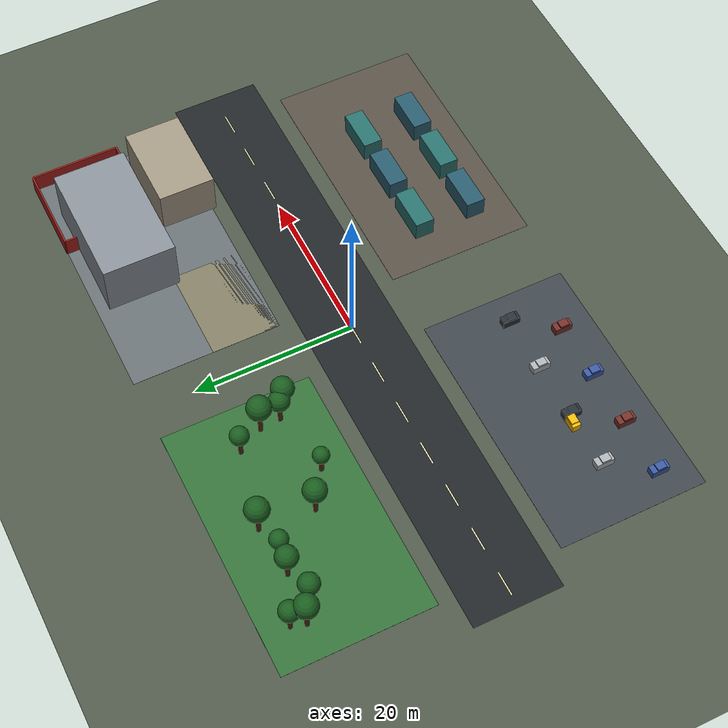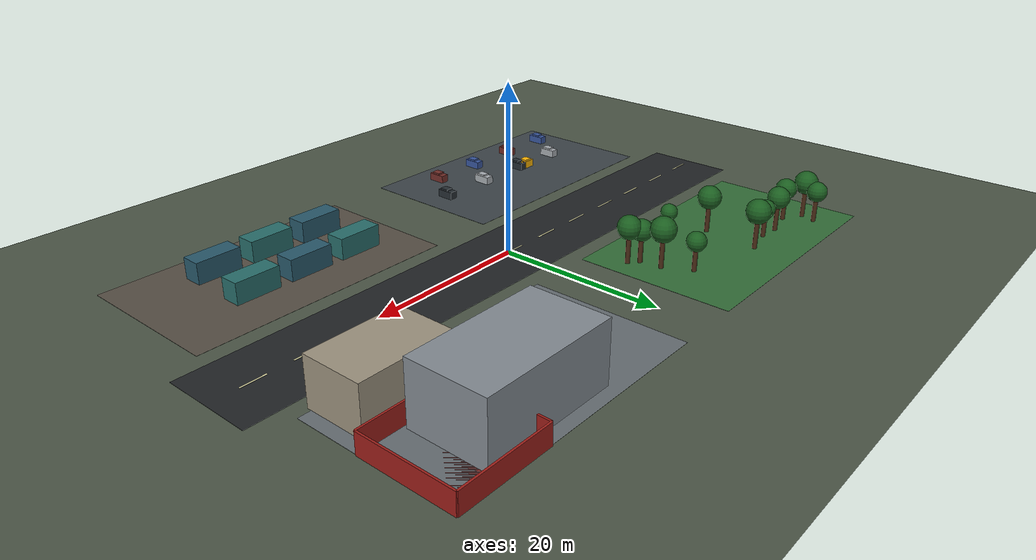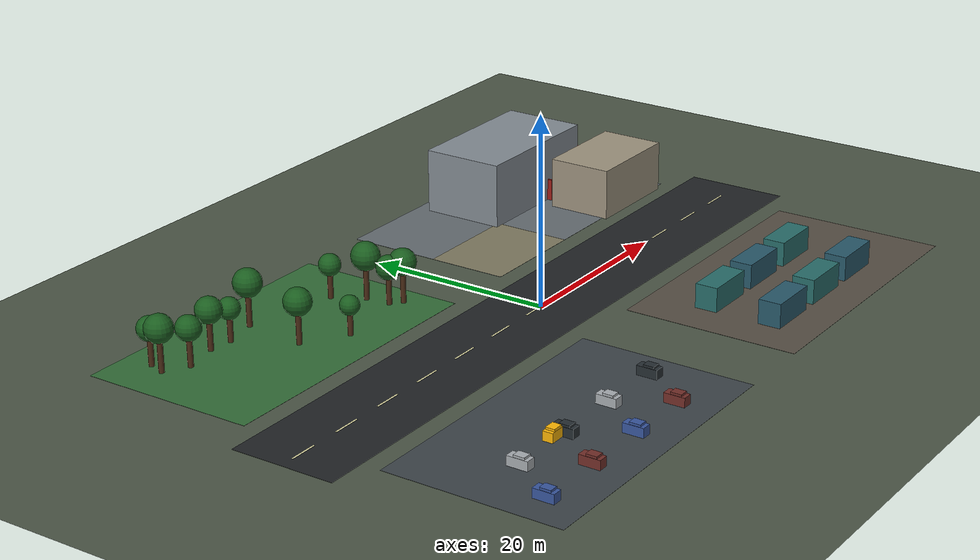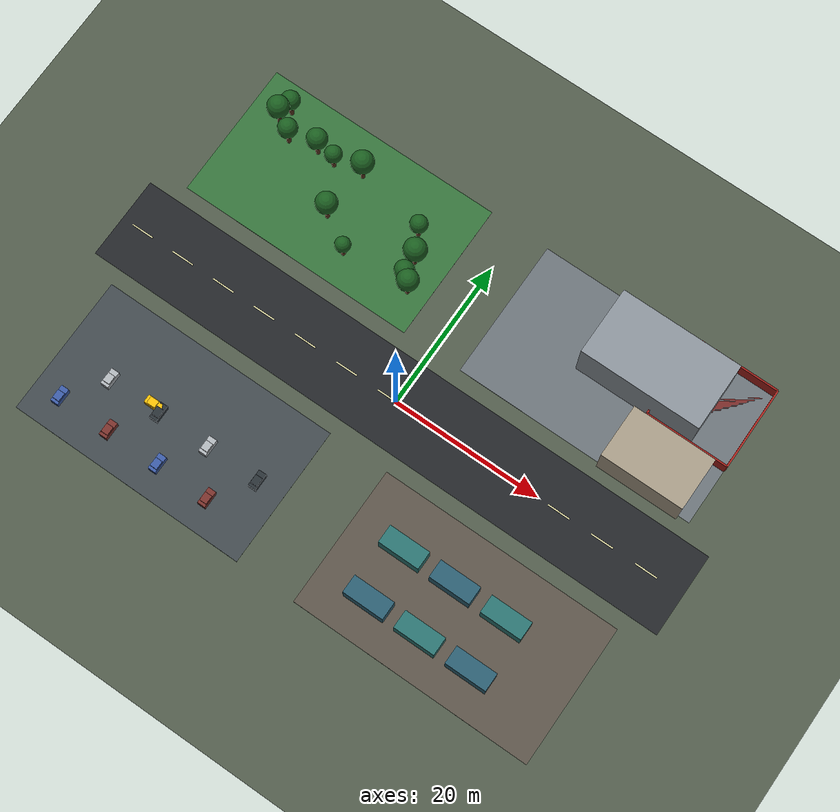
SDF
<?xml version='1.0' encoding='utf-8'?>
<sdf version="1.9">
  <world name="gsi_search_world_v1_1">
    <physics type="ode">
      <max_step_size>0.004</max_step_size>
      <real_time_factor>1.0</real_time_factor>
      <real_time_update_rate>250</real_time_update_rate>
    </physics>
    <gravity>0 0 -9.8</gravity>
    <magnetic_field>6e-06 2.3e-05 -4.2e-05</magnetic_field>
    <atmosphere type="adiabatic" />
    <scene>
      <grid>false</grid>
      <ambient>0.62 0.62 0.60 1</ambient>
      <background>0.70 0.78 0.84 1</background>
      <shadows>true</shadows>
    </scene>
    <light name="sun" type="directional">
      <pose>0 0 100 0 0 0</pose>
      <cast_shadows>true</cast_shadows>
      <intensity>1.0</intensity>
      <direction>-0.3 0.2 -0.9</direction>
      <diffuse>0.95 0.93 0.88 1</diffuse>
      <specular>0.25 0.25 0.25 1</specular>
    </light>
    <spherical_coordinates>
      <surface_model>EARTH_WGS84</surface_model>
      <world_frame_orientation>ENU</world_frame_orientation>
      <latitude_deg>30.33403400</latitude_deg>
      <longitude_deg>120.03629500</longitude_deg>
      <elevation>0</elevation>
    </spherical_coordinates>
    <model name="ground_plane">
      <static>true</static>
      <link name="link">
        <collision name="collision">
          <geometry>
            <plane>
              <normal>0 0 1</normal>
              <size>110 90</size>
            </plane>
          </geometry>
        </collision>
        <visual name="visual">
          <geometry>
            <plane>
              <normal>0 0 1</normal>
              <size>110 90</size>
            </plane>
          </geometry>
          <material>
            <ambient>0.3 0.34 0.28 1</ambient>
            <diffuse>0.3 0.34 0.28 1</diffuse>
            <specular>0.12 0.12 0.12 1</specular>
          </material>
        </visual>
      </link>
    </model>
    <model name="semantic-parking-west">
      <static>true</static>
      <pose>-20 -16.75 0.015 0 0 0</pose>
      <link name="link">
        <visual name="visual">
          <geometry>
            <box>
              <size>32 18.5 0.02</size>
            </box>
          </geometry>
          <cast_shadows>false</cast_shadows>
          <material>
            <ambient>0.24 0.27 0.29 1</ambient>
            <diffuse>0.24 0.27 0.29 1</diffuse>
            <specular>0.12 0.12 0.12 1</specular>
          </material>
        </visual>
      </link>
    </model>
    <model name="semantic-loading-east">
      <static>true</static>
      <pose>20 -16.75 0.015 0 0 0</pose>
      <link name="link">
        <visual name="visual">
          <geometry>
            <box>
              <size>32 18.5 0.02</size>
            </box>
          </geometry>
          <cast_shadows>false</cast_shadows>
          <material>
            <ambient>0.34 0.31 0.27 1</ambient>
            <diffuse>0.34 0.31 0.27 1</diffuse>
            <specular>0.12 0.12 0.12 1</specular>
          </material>
        </visual>
      </link>
    </model>
    <model name="semantic-park-northwest">
      <static>true</static>
      <pose>-20 16.75 0.015 0 0 0</pose>
      <link name="link">
        <visual name="visual">
          <geometry>
            <box>
              <size>32 18.5 0.02</size>
            </box>
          </geometry>
          <cast_shadows>false</cast_shadows>
          <material>
            <ambient>0.2 0.43 0.22 1</ambient>
            <diffuse>0.2 0.43 0.22 1</diffuse>
            <specular>0.12 0.12 0.12 1</specular>
          </material>
        </visual>
      </link>
    </model>
    <model name="semantic-campus-northeast">
      <static>true</static>
      <pose>20 16.75 0.015 0 0 0</pose>
      <link name="link">
        <visual name="visual">
          <geometry>
            <box>
              <size>32 18.5 0.02</size>
            </box>
          </geometry>
          <cast_shadows>false</cast_shadows>
          <material>
            <ambient>0.4 0.43 0.45 1</ambient>
            <diffuse>0.4 0.43 0.45 1</diffuse>
            <specular>0.12 0.12 0.12 1</specular>
          </material>
        </visual>
      </link>
    </model>
    <model name="semantic-road-main">
      <static>true</static>
      <pose>0 0 0.015 0 0 0</pose>
      <link name="link">
        <visual name="visual">
          <geometry>
            <box>
              <size>80 11 0.02</size>
            </box>
          </geometry>
          <cast_shadows>false</cast_shadows>
          <material>
            <ambient>0.13 0.14 0.15 1</ambient>
            <diffuse>0.13 0.14 0.15 1</diffuse>
            <specular>0.12 0.12 0.12 1</specular>
          </material>
        </visual>
      </link>
    </model>
    <model name="semantic-entrance-east">
      <static>true</static>
      <pose>10 11.75 0.015 0 0 0</pose>
      <link name="link">
        <visual name="visual">
          <geometry>
            <box>
              <size>12 8.5 0.02</size>
            </box>
          </geometry>
          <cast_shadows>false</cast_shadows>
          <material>
            <ambient>0.5 0.48 0.38 1</ambient>
            <diffuse>0.5 0.48 0.38 1</diffuse>
            <specular>0.12 0.12 0.12 1</specular>
          </material>
        </visual>
      </link>
    </model>
    <model name="semantic-restricted-northeast">
      <static>true</static>
      <pose>30.5 20.5 0.015 0 0 0</pose>
      <link name="link">
        <visual name="visual">
          <geometry>
            <box>
              <size>11 11 0.02</size>
            </box>
          </geometry>
          <cast_shadows>false</cast_shadows>
          <material>
            <ambient>0.45 0.16 0.15 1</ambient>
            <diffuse>0.45 0.16 0.15 1</diffuse>
            <specular>0.12 0.12 0.12 1</specular>
          </material>
        </visual>
      </link>
    </model>
    <model name="road-marking-01">
      <static>true</static>
      <pose>-37 0 0.035 0 0 0</pose>
      <link name="link">
        <visual name="visual">
          <geometry>
            <box>
              <size>3 0.18 0.025</size>
            </box>
          </geometry>
          <cast_shadows>false</cast_shadows>
          <material>
            <ambient>0.92 0.9 0.68 1</ambient>
            <diffuse>0.92 0.9 0.68 1</diffuse>
            <specular>0.12 0.12 0.12 1</specular>
          </material>
        </visual>
      </link>
    </model>
    <model name="road-marking-02">
      <static>true</static>
      <pose>-31 0 0.035 0 0 0</pose>
      <link name="link">
        <visual name="visual">
          <geometry>
            <box>
              <size>3 0.18 0.025</size>
            </box>
          </geometry>
          <cast_shadows>false</cast_shadows>
          <material>
            <ambient>0.92 0.9 0.68 1</ambient>
            <diffuse>0.92 0.9 0.68 1</diffuse>
            <specular>0.12 0.12 0.12 1</specular>
          </material>
        </visual>
      </link>
    </model>
    <model name="road-marking-03">
      <static>true</static>
      <pose>-25 0 0.035 0 0 0</pose>
      <link name="link">
        <visual name="visual">
          <geometry>
            <box>
              <size>3 0.18 0.025</size>
            </box>
          </geometry>
          <cast_shadows>false</cast_shadows>
          <material>
            <ambient>0.92 0.9 0.68 1</ambient>
            <diffuse>0.92 0.9 0.68 1</diffuse>
            <specular>0.12 0.12 0.12 1</specular>
          </material>
        </visual>
      </link>
    </model>
    <model name="road-marking-04">
      <static>true</static>
      <pose>-19 0 0.035 0 0 0</pose>
      <link name="link">
        <visual name="visual">
          <geometry>
            <box>
              <size>3 0.18 0.025</size>
            </box>
          </geometry>
          <cast_shadows>false</cast_shadows>
          <material>
            <ambient>0.92 0.9 0.68 1</ambient>
            <diffuse>0.92 0.9 0.68 1</diffuse>
            <specular>0.12 0.12 0.12 1</specular>
          </material>
        </visual>
      </link>
    </model>
    <model name="road-marking-05">
      <static>true</static>
      <pose>-13 0 0.035 0 0 0</pose>
      <link name="link">
        <visual name="visual">
          <geometry>
            <box>
              <size>3 0.18 0.025</size>
            </box>
          </geometry>
          <cast_shadows>false</cast_shadows>
          <material>
            <ambient>0.92 0.9 0.68 1</ambient>
            <diffuse>0.92 0.9 0.68 1</diffuse>
            <specular>0.12 0.12 0.12 1</specular>
          </material>
        </visual>
      </link>
    </model>
    <model name="road-marking-06">
      <static>true</static>
      <pose>-7 0 0.035 0 0 0</pose>
      <link name="link">
        <visual name="visual">
          <geometry>
            <box>
              <size>3 0.18 0.025</size>
            </box>
          </geometry>
          <cast_shadows>false</cast_shadows>
          <material>
            <ambient>0.92 0.9 0.68 1</ambient>
            <diffuse>0.92 0.9 0.68 1</diffuse>
            <specular>0.12 0.12 0.12 1</specular>
          </material>
        </visual>
      </link>
    </model>
    <model name="road-marking-07">
      <static>true</static>
      <pose>-1 0 0.035 0 0 0</pose>
      <link name="link">
        <visual name="visual">
          <geometry>
            <box>
              <size>3 0.18 0.025</size>
            </box>
          </geometry>
          <cast_shadows>false</cast_shadows>
          <material>
            <ambient>0.92 0.9 0.68 1</ambient>
            <diffuse>0.92 0.9 0.68 1</diffuse>
            <specular>0.12 0.12 0.12 1</specular>
          </material>
        </visual>
      </link>
    </model>
    <model name="road-marking-08">
      <static>true</static>
      <pose>5 0 0.035 0 0 0</pose>
      <link name="link">
        <visual name="visual">
          <geometry>
            <box>
              <size>3 0.18 0.025</size>
            </box>
          </geometry>
          <cast_shadows>false</cast_shadows>
          <material>
            <ambient>0.92 0.9 0.68 1</ambient>
            <diffuse>0.92 0.9 0.68 1</diffuse>
            <specular>0.12 0.12 0.12 1</specular>
          </material>
        </visual>
      </link>
    </model>
    <model name="road-marking-09">
      <static>true</static>
      <pose>11 0 0.035 0 0 0</pose>
      <link name="link">
        <visual name="visual">
          <geometry>
            <box>
              <size>3 0.18 0.025</size>
            </box>
          </geometry>
          <cast_shadows>false</cast_shadows>
          <material>
            <ambient>0.92 0.9 0.68 1</ambient>
            <diffuse>0.92 0.9 0.68 1</diffuse>
            <specular>0.12 0.12 0.12 1</specular>
          </material>
        </visual>
      </link>
    </model>
    <model name="road-marking-10">
      <static>true</static>
      <pose>17 0 0.035 0 0 0</pose>
      <link name="link">
        <visual name="visual">
          <geometry>
            <box>
              <size>3 0.18 0.025</size>
            </box>
          </geometry>
          <cast_shadows>false</cast_shadows>
          <material>
            <ambient>0.92 0.9 0.68 1</ambient>
            <diffuse>0.92 0.9 0.68 1</diffuse>
            <specular>0.12 0.12 0.12 1</specular>
          </material>
        </visual>
      </link>
    </model>
    <model name="road-marking-11">
      <static>true</static>
      <pose>23 0 0.035 0 0 0</pose>
      <link name="link">
        <visual name="visual">
          <geometry>
            <box>
              <size>3 0.18 0.025</size>
            </box>
          </geometry>
          <cast_shadows>false</cast_shadows>
          <material>
            <ambient>0.92 0.9 0.68 1</ambient>
            <diffuse>0.92 0.9 0.68 1</diffuse>
            <specular>0.12 0.12 0.12 1</specular>
          </material>
        </visual>
      </link>
    </model>
    <model name="road-marking-12">
      <static>true</static>
      <pose>29 0 0.035 0 0 0</pose>
      <link name="link">
        <visual name="visual">
          <geometry>
            <box>
              <size>3 0.18 0.025</size>
            </box>
          </geometry>
          <cast_shadows>false</cast_shadows>
          <material>
            <ambient>0.92 0.9 0.68 1</ambient>
            <diffuse>0.92 0.9 0.68 1</diffuse>
            <specular>0.12 0.12 0.12 1</specular>
          </material>
        </visual>
      </link>
    </model>
    <model name="road-marking-13">
      <static>true</static>
      <pose>35 0 0.035 0 0 0</pose>
      <link name="link">
        <visual name="visual">
          <geometry>
            <box>
              <size>3 0.18 0.025</size>
            </box>
          </geometry>
          <cast_shadows>false</cast_shadows>
          <material>
            <ambient>0.92 0.9 0.68 1</ambient>
            <diffuse>0.92 0.9 0.68 1</diffuse>
            <specular>0.12 0.12 0.12 1</specular>
          </material>
        </visual>
      </link>
    </model>
    <model name="office-main">
      <static>true</static>
      <pose>23 20 3.5 0 0 0</pose>
      <link name="link">
        <collision name="collision">
          <geometry>
            <box>
              <size>16 9 7</size>
            </box>
          </geometry>
        </collision>
        <visual name="visual">
          <geometry>
            <box>
              <size>16 9 7</size>
            </box>
          </geometry>
          <cast_shadows>true</cast_shadows>
          <material>
            <ambient>0.52 0.55 0.58 1</ambient>
            <diffuse>0.52 0.55 0.58 1</diffuse>
            <specular>0.12 0.12 0.12 1</specular>
          </material>
        </visual>
      </link>
    </model>
    <model name="service-building">
      <static>true</static>
      <pose>29 10.5 2.75 0 0 0</pose>
      <link name="link">
        <collision name="collision">
          <geometry>
            <box>
              <size>11 7 5.5</size>
            </box>
          </geometry>
        </collision>
        <visual name="visual">
          <geometry>
            <box>
              <size>11 7 5.5</size>
            </box>
          </geometry>
          <cast_shadows>true</cast_shadows>
          <material>
            <ambient>0.62 0.58 0.5 1</ambient>
            <diffuse>0.62 0.58 0.5 1</diffuse>
            <specular>0.12 0.12 0.12 1</specular>
          </material>
        </visual>
      </link>
    </model>
    <model name="tree-01">
      <static>true</static>
      <pose>-19.4064 20.8903 0 0 0 0</pose>
      <link name="tree">
        <collision name="trunk_collision">
          <pose>0 0 2.07235 0 0 0</pose>
          <geometry>
            <cylinder>
              <radius>0.32</radius>
              <length>4.14469</length>
            </cylinder>
          </geometry>
        </collision>
        <visual name="trunk">
          <pose>0 0 2.07235 0 0 0</pose>
          <geometry>
            <cylinder>
              <radius>0.28</radius>
              <length>4.14469</length>
            </cylinder>
          </geometry>
          <material>
            <ambient>0.28 0.16 0.08 1</ambient>
            <diffuse>0.28 0.16 0.08 1</diffuse>
            <specular>0.12 0.12 0.12 1</specular>
          </material>
        </visual>
        <visual name="canopy">
          <pose>0 0 4.61837 0 0 0</pose>
          <geometry>
            <sphere>
              <radius>1.48025</radius>
            </sphere>
          </geometry>
          <material>
            <ambient>0.1 0.36 0.12 1</ambient>
            <diffuse>0.1 0.36 0.12 1</diffuse>
            <specular>0.12 0.12 0.12 1</specular>
          </material>
        </visual>
      </link>
    </model>
    <model name="tree-02">
      <static>true</static>
      <pose>-25.6801 20.3425 0 0 0 0</pose>
      <link name="tree">
        <collision name="trunk_collision">
          <pose>0 0 1.89295 0 0 0</pose>
          <geometry>
            <cylinder>
              <radius>0.32</radius>
              <length>3.78591</length>
            </cylinder>
          </geometry>
        </collision>
        <visual name="trunk">
          <pose>0 0 1.89295 0 0 0</pose>
          <geometry>
            <cylinder>
              <radius>0.28</radius>
              <length>3.78591</length>
            </cylinder>
          </geometry>
          <material>
            <ambient>0.28 0.16 0.08 1</ambient>
            <diffuse>0.28 0.16 0.08 1</diffuse>
            <specular>0.12 0.12 0.12 1</specular>
          </material>
        </visual>
        <visual name="canopy">
          <pose>0 0 4.21858 0 0 0</pose>
          <geometry>
            <sphere>
              <radius>1.35211</radius>
            </sphere>
          </geometry>
          <material>
            <ambient>0.1 0.36 0.12 1</ambient>
            <diffuse>0.1 0.36 0.12 1</diffuse>
            <specular>0.12 0.12 0.12 1</specular>
          </material>
        </visual>
      </link>
    </model>
    <model name="tree-03">
      <static>true</static>
      <pose>-15.6427 11.4872 0 0 0 0</pose>
      <link name="tree">
        <collision name="trunk_collision">
          <pose>0 0 1.41886 0 0 0</pose>
          <geometry>
            <cylinder>
              <radius>0.32</radius>
              <length>2.83771</length>
            </cylinder>
          </geometry>
        </collision>
        <visual name="trunk">
          <pose>0 0 1.41886 0 0 0</pose>
          <geometry>
            <cylinder>
              <radius>0.28</radius>
              <length>2.83771</length>
            </cylinder>
          </geometry>
          <material>
            <ambient>0.28 0.16 0.08 1</ambient>
            <diffuse>0.28 0.16 0.08 1</diffuse>
            <specular>0.12 0.12 0.12 1</specular>
          </material>
        </visual>
        <visual name="canopy">
          <pose>0 0 3.16202 0 0 0</pose>
          <geometry>
            <sphere>
              <radius>1.01347</radius>
            </sphere>
          </geometry>
          <material>
            <ambient>0.1 0.36 0.12 1</ambient>
            <diffuse>0.1 0.36 0.12 1</diffuse>
            <specular>0.12 0.12 0.12 1</specular>
          </material>
        </visual>
      </link>
    </model>
    <model name="tree-04">
      <static>true</static>
      <pose>-23.1274 20.0763 0 0 0 0</pose>
      <link name="tree">
        <collision name="trunk_collision">
          <pose>0 0 1.57667 0 0 0</pose>
          <geometry>
            <cylinder>
              <radius>0.32</radius>
              <length>3.15334</length>
            </cylinder>
          </geometry>
        </collision>
        <visual name="trunk">
          <pose>0 0 1.57667 0 0 0</pose>
          <geometry>
            <cylinder>
              <radius>0.28</radius>
              <length>3.15334</length>
            </cylinder>
          </geometry>
          <material>
            <ambient>0.28 0.16 0.08 1</ambient>
            <diffuse>0.28 0.16 0.08 1</diffuse>
            <specular>0.12 0.12 0.12 1</specular>
          </material>
        </visual>
        <visual name="canopy">
          <pose>0 0 3.51372 0 0 0</pose>
          <geometry>
            <sphere>
              <radius>1.12619</radius>
            </sphere>
          </geometry>
          <material>
            <ambient>0.1 0.36 0.12 1</ambient>
            <diffuse>0.1 0.36 0.12 1</diffuse>
            <specular>0.12 0.12 0.12 1</specular>
          </material>
        </visual>
      </link>
    </model>
    <model name="tree-05">
      <static>true</static>
      <pose>-19.9567 14.2854 0 0 0 0</pose>
      <link name="tree">
        <collision name="trunk_collision">
          <pose>0 0 1.99243 0 0 0</pose>
          <geometry>
            <cylinder>
              <radius>0.32</radius>
              <length>3.98486</length>
            </cylinder>
          </geometry>
        </collision>
        <visual name="trunk">
          <pose>0 0 1.99243 0 0 0</pose>
          <geometry>
            <cylinder>
              <radius>0.28</radius>
              <length>3.98486</length>
            </cylinder>
          </geometry>
          <material>
            <ambient>0.28 0.16 0.08 1</ambient>
            <diffuse>0.28 0.16 0.08 1</diffuse>
            <specular>0.12 0.12 0.12 1</specular>
          </material>
        </visual>
        <visual name="canopy">
          <pose>0 0 4.44027 0 0 0</pose>
          <geometry>
            <sphere>
              <radius>1.42316</radius>
            </sphere>
          </geometry>
          <material>
            <ambient>0.1 0.36 0.12 1</ambient>
            <diffuse>0.1 0.36 0.12 1</diffuse>
            <specular>0.12 0.12 0.12 1</specular>
          </material>
        </visual>
      </link>
    </model>
    <model name="tree-06">
      <static>true</static>
      <pose>-7.97976 15.4215 0 0 0 0</pose>
      <link name="tree">
        <collision name="trunk_collision">
          <pose>0 0 2.09891 0 0 0</pose>
          <geometry>
            <cylinder>
              <radius>0.32</radius>
              <length>4.19783</length>
            </cylinder>
          </geometry>
        </collision>
        <visual name="trunk">
          <pose>0 0 2.09891 0 0 0</pose>
          <geometry>
            <cylinder>
              <radius>0.28</radius>
              <length>4.19783</length>
            </cylinder>
          </geometry>
          <material>
            <ambient>0.28 0.16 0.08 1</ambient>
            <diffuse>0.28 0.16 0.08 1</diffuse>
            <specular>0.12 0.12 0.12 1</specular>
          </material>
        </visual>
        <visual name="canopy">
          <pose>0 0 4.67758 0 0 0</pose>
          <geometry>
            <sphere>
              <radius>1.49922</radius>
            </sphere>
          </geometry>
          <material>
            <ambient>0.1 0.36 0.12 1</ambient>
            <diffuse>0.1 0.36 0.12 1</diffuse>
            <specular>0.12 0.12 0.12 1</specular>
          </material>
        </visual>
      </link>
    </model>
    <model name="tree-07">
      <static>true</static>
      <pose>-31.8208 20.9702 0 0 0 0</pose>
      <link name="tree">
        <collision name="trunk_collision">
          <pose>0 0 2.01272 0 0 0</pose>
          <geometry>
            <cylinder>
              <radius>0.32</radius>
              <length>4.02544</length>
            </cylinder>
          </geometry>
        </collision>
        <visual name="trunk">
          <pose>0 0 2.01272 0 0 0</pose>
          <geometry>
            <cylinder>
              <radius>0.28</radius>
              <length>4.02544</length>
            </cylinder>
          </geometry>
          <material>
            <ambient>0.28 0.16 0.08 1</ambient>
            <diffuse>0.28 0.16 0.08 1</diffuse>
            <specular>0.12 0.12 0.12 1</specular>
          </material>
        </visual>
        <visual name="canopy">
          <pose>0 0 4.48549 0 0 0</pose>
          <geometry>
            <sphere>
              <radius>1.43766</radius>
            </sphere>
          </geometry>
          <material>
            <ambient>0.1 0.36 0.12 1</ambient>
            <diffuse>0.1 0.36 0.12 1</diffuse>
            <specular>0.12 0.12 0.12 1</specular>
          </material>
        </visual>
      </link>
    </model>
    <model name="tree-08">
      <static>true</static>
      <pose>-29.4253 19.5252 0 0 0 0</pose>
      <link name="tree">
        <collision name="trunk_collision">
          <pose>0 0 1.79122 0 0 0</pose>
          <geometry>
            <cylinder>
              <radius>0.32</radius>
              <length>3.58245</length>
            </cylinder>
          </geometry>
        </collision>
        <visual name="trunk">
          <pose>0 0 1.79122 0 0 0</pose>
          <geometry>
            <cylinder>
              <radius>0.28</radius>
              <length>3.58245</length>
            </cylinder>
          </geometry>
          <material>
            <ambient>0.28 0.16 0.08 1</ambient>
            <diffuse>0.28 0.16 0.08 1</diffuse>
            <specular>0.12 0.12 0.12 1</specular>
          </material>
        </visual>
        <visual name="canopy">
          <pose>0 0 3.99187 0 0 0</pose>
          <geometry>
            <sphere>
              <radius>1.27945</radius>
            </sphere>
          </geometry>
          <material>
            <ambient>0.1 0.36 0.12 1</ambient>
            <diffuse>0.1 0.36 0.12 1</diffuse>
            <specular>0.12 0.12 0.12 1</specular>
          </material>
        </visual>
      </link>
    </model>
    <model name="tree-09">
      <static>true</static>
      <pose>-7.70993 12.8351 0 0 0 0</pose>
      <link name="tree">
        <collision name="trunk_collision">
          <pose>0 0 1.77797 0 0 0</pose>
          <geometry>
            <cylinder>
              <radius>0.32</radius>
              <length>3.55595</length>
            </cylinder>
          </geometry>
        </collision>
        <visual name="trunk">
          <pose>0 0 1.77797 0 0 0</pose>
          <geometry>
            <cylinder>
              <radius>0.28</radius>
              <length>3.55595</length>
            </cylinder>
          </geometry>
          <material>
            <ambient>0.28 0.16 0.08 1</ambient>
            <diffuse>0.28 0.16 0.08 1</diffuse>
            <specular>0.12 0.12 0.12 1</specular>
          </material>
        </visual>
        <visual name="canopy">
          <pose>0 0 3.96234 0 0 0</pose>
          <geometry>
            <sphere>
              <radius>1.26998</radius>
            </sphere>
          </geometry>
          <material>
            <ambient>0.1 0.36 0.12 1</ambient>
            <diffuse>0.1 0.36 0.12 1</diffuse>
            <specular>0.12 0.12 0.12 1</specular>
          </material>
        </visual>
      </link>
    </model>
    <model name="tree-10">
      <static>true</static>
      <pose>-9.67369 18.6234 0 0 0 0</pose>
      <link name="tree">
        <collision name="trunk_collision">
          <pose>0 0 1.61644 0 0 0</pose>
          <geometry>
            <cylinder>
              <radius>0.32</radius>
              <length>3.23288</length>
            </cylinder>
          </geometry>
        </collision>
        <visual name="trunk">
          <pose>0 0 1.61644 0 0 0</pose>
          <geometry>
            <cylinder>
              <radius>0.28</radius>
              <length>3.23288</length>
            </cylinder>
          </geometry>
          <material>
            <ambient>0.28 0.16 0.08 1</ambient>
            <diffuse>0.28 0.16 0.08 1</diffuse>
            <specular>0.12 0.12 0.12 1</specular>
          </material>
        </visual>
        <visual name="canopy">
          <pose>0 0 3.60235 0 0 0</pose>
          <geometry>
            <sphere>
              <radius>1.1546</radius>
            </sphere>
          </geometry>
          <material>
            <ambient>0.1 0.36 0.12 1</ambient>
            <diffuse>0.1 0.36 0.12 1</diffuse>
            <specular>0.12 0.12 0.12 1</specular>
          </material>
        </visual>
      </link>
    </model>
    <model name="tree-11">
      <static>true</static>
      <pose>-31.2897 22.687 0 0 0 0</pose>
      <link name="tree">
        <collision name="trunk_collision">
          <pose>0 0 1.73187 0 0 0</pose>
          <geometry>
            <cylinder>
              <radius>0.32</radius>
              <length>3.46374</length>
            </cylinder>
          </geometry>
        </collision>
        <visual name="trunk">
          <pose>0 0 1.73187 0 0 0</pose>
          <geometry>
            <cylinder>
              <radius>0.28</radius>
              <length>3.46374</length>
            </cylinder>
          </geometry>
          <material>
            <ambient>0.28 0.16 0.08 1</ambient>
            <diffuse>0.28 0.16 0.08 1</diffuse>
            <specular>0.12 0.12 0.12 1</specular>
          </material>
        </visual>
        <visual name="canopy">
          <pose>0 0 3.85959 0 0 0</pose>
          <geometry>
            <sphere>
              <radius>1.23705</radius>
            </sphere>
          </geometry>
          <material>
            <ambient>0.1 0.36 0.12 1</ambient>
            <diffuse>0.1 0.36 0.12 1</diffuse>
            <specular>0.12 0.12 0.12 1</specular>
          </material>
        </visual>
      </link>
    </model>
    <model name="tree-12">
      <static>true</static>
      <pose>-6.59919 11.9117 0 0 0 0</pose>
      <link name="tree">
        <collision name="trunk_collision">
          <pose>0 0 1.96854 0 0 0</pose>
          <geometry>
            <cylinder>
              <radius>0.32</radius>
              <length>3.93709</length>
            </cylinder>
          </geometry>
        </collision>
        <visual name="trunk">
          <pose>0 0 1.96854 0 0 0</pose>
          <geometry>
            <cylinder>
              <radius>0.28</radius>
              <length>3.93709</length>
            </cylinder>
          </geometry>
          <material>
            <ambient>0.28 0.16 0.08 1</ambient>
            <diffuse>0.28 0.16 0.08 1</diffuse>
            <specular>0.12 0.12 0.12 1</specular>
          </material>
        </visual>
        <visual name="canopy">
          <pose>0 0 4.38704 0 0 0</pose>
          <geometry>
            <sphere>
              <radius>1.4061</radius>
            </sphere>
          </geometry>
          <material>
            <ambient>0.1 0.36 0.12 1</ambient>
            <diffuse>0.1 0.36 0.12 1</diffuse>
            <specular>0.12 0.12 0.12 1</specular>
          </material>
        </visual>
      </link>
    </model>
    <model name="parked-vehicle-01">
      <static>true</static>
      <pose>-32.4444 -22 0 0 0 1.5708</pose>
      <link name="body">
        <collision name="body_collision">
          <pose>0 0 0.5 0 0 0</pose>
          <geometry>
            <box>
              <size>2.2 1.05 1.0</size>
            </box>
          </geometry>
        </collision>
        <visual name="body_visual">
          <pose>0 0 0.5 0 0 0</pose>
          <geometry>
            <box>
              <size>2.2 1.05 1.0</size>
            </box>
          </geometry>
          <material>
            <ambient>0.22 0.34 0.62 1</ambient>
            <diffuse>0.22 0.34 0.62 1</diffuse>
            <specular>0.12 0.12 0.12 1</specular>
          </material>
        </visual>
        <visual name="roof">
          <pose>-0.15 0 1.05 0 0 0</pose>
          <geometry>
            <box>
              <size>1.15 0.94 0.35</size>
            </box>
          </geometry>
          <material>
            <ambient>0.22 0.34 0.62 1</ambient>
            <diffuse>0.22 0.34 0.62 1</diffuse>
            <specular>0.12 0.12 0.12 1</specular>
          </material>
        </visual>
      </link>
    </model>
    <model name="parked-vehicle-02">
      <static>true</static>
      <pose>-28.8889 -17 0 0 0 1.5708</pose>
      <link name="body">
        <collision name="body_collision">
          <pose>0 0 0.5 0 0 0</pose>
          <geometry>
            <box>
              <size>2.2 1.05 1.0</size>
            </box>
          </geometry>
        </collision>
        <visual name="body_visual">
          <pose>0 0 0.5 0 0 0</pose>
          <geometry>
            <box>
              <size>2.2 1.05 1.0</size>
            </box>
          </geometry>
          <material>
            <ambient>0.66 0.68 0.7 1</ambient>
            <diffuse>0.66 0.68 0.7 1</diffuse>
            <specular>0.12 0.12 0.12 1</specular>
          </material>
        </visual>
        <visual name="roof">
          <pose>-0.15 0 1.05 0 0 0</pose>
          <geometry>
            <box>
              <size>1.15 0.94 0.35</size>
            </box>
          </geometry>
          <material>
            <ambient>0.66 0.68 0.7 1</ambient>
            <diffuse>0.66 0.68 0.7 1</diffuse>
            <specular>0.12 0.12 0.12 1</specular>
          </material>
        </visual>
      </link>
    </model>
    <model name="parked-vehicle-03">
      <static>true</static>
      <pose>-25.3333 -22 0 0 0 1.5708</pose>
      <link name="body">
        <collision name="body_collision">
          <pose>0 0 0.5 0 0 0</pose>
          <geometry>
            <box>
              <size>2.2 1.05 1.0</size>
            </box>
          </geometry>
        </collision>
        <visual name="body_visual">
          <pose>0 0 0.5 0 0 0</pose>
          <geometry>
            <box>
              <size>2.2 1.05 1.0</size>
            </box>
          </geometry>
          <material>
            <ambient>0.45 0.18 0.16 1</ambient>
            <diffuse>0.45 0.18 0.16 1</diffuse>
            <specular>0.12 0.12 0.12 1</specular>
          </material>
        </visual>
        <visual name="roof">
          <pose>-0.15 0 1.05 0 0 0</pose>
          <geometry>
            <box>
              <size>1.15 0.94 0.35</size>
            </box>
          </geometry>
          <material>
            <ambient>0.45 0.18 0.16 1</ambient>
            <diffuse>0.45 0.18 0.16 1</diffuse>
            <specular>0.12 0.12 0.12 1</specular>
          </material>
        </visual>
      </link>
    </model>
    <model name="parked-vehicle-04">
      <static>true</static>
      <pose>-21.7778 -17 0 0 0 1.5708</pose>
      <link name="body">
        <collision name="body_collision">
          <pose>0 0 0.5 0 0 0</pose>
          <geometry>
            <box>
              <size>2.2 1.05 1.0</size>
            </box>
          </geometry>
        </collision>
        <visual name="body_visual">
          <pose>0 0 0.5 0 0 0</pose>
          <geometry>
            <box>
              <size>2.2 1.05 1.0</size>
            </box>
          </geometry>
          <material>
            <ambient>0.15 0.18 0.2 1</ambient>
            <diffuse>0.15 0.18 0.2 1</diffuse>
            <specular>0.12 0.12 0.12 1</specular>
          </material>
        </visual>
        <visual name="roof">
          <pose>-0.15 0 1.05 0 0 0</pose>
          <geometry>
            <box>
              <size>1.15 0.94 0.35</size>
            </box>
          </geometry>
          <material>
            <ambient>0.15 0.18 0.2 1</ambient>
            <diffuse>0.15 0.18 0.2 1</diffuse>
            <specular>0.12 0.12 0.12 1</specular>
          </material>
        </visual>
      </link>
    </model>
    <model name="parked-vehicle-05">
      <static>true</static>
      <pose>-18.2222 -22 0 0 0 1.5708</pose>
      <link name="body">
        <collision name="body_collision">
          <pose>0 0 0.5 0 0 0</pose>
          <geometry>
            <box>
              <size>2.2 1.05 1.0</size>
            </box>
          </geometry>
        </collision>
        <visual name="body_visual">
          <pose>0 0 0.5 0 0 0</pose>
          <geometry>
            <box>
              <size>2.2 1.05 1.0</size>
            </box>
          </geometry>
          <material>
            <ambient>0.22 0.34 0.62 1</ambient>
            <diffuse>0.22 0.34 0.62 1</diffuse>
            <specular>0.12 0.12 0.12 1</specular>
          </material>
        </visual>
        <visual name="roof">
          <pose>-0.15 0 1.05 0 0 0</pose>
          <geometry>
            <box>
              <size>1.15 0.94 0.35</size>
            </box>
          </geometry>
          <material>
            <ambient>0.22 0.34 0.62 1</ambient>
            <diffuse>0.22 0.34 0.62 1</diffuse>
            <specular>0.12 0.12 0.12 1</specular>
          </material>
        </visual>
      </link>
    </model>
    <model name="parked-vehicle-06">
      <static>true</static>
      <pose>-14.6667 -17 0 0 0 1.5708</pose>
      <link name="body">
        <collision name="body_collision">
          <pose>0 0 0.5 0 0 0</pose>
          <geometry>
            <box>
              <size>2.2 1.05 1.0</size>
            </box>
          </geometry>
        </collision>
        <visual name="body_visual">
          <pose>0 0 0.5 0 0 0</pose>
          <geometry>
            <box>
              <size>2.2 1.05 1.0</size>
            </box>
          </geometry>
          <material>
            <ambient>0.66 0.68 0.7 1</ambient>
            <diffuse>0.66 0.68 0.7 1</diffuse>
            <specular>0.12 0.12 0.12 1</specular>
          </material>
        </visual>
        <visual name="roof">
          <pose>-0.15 0 1.05 0 0 0</pose>
          <geometry>
            <box>
              <size>1.15 0.94 0.35</size>
            </box>
          </geometry>
          <material>
            <ambient>0.66 0.68 0.7 1</ambient>
            <diffuse>0.66 0.68 0.7 1</diffuse>
            <specular>0.12 0.12 0.12 1</specular>
          </material>
        </visual>
      </link>
    </model>
    <model name="parked-vehicle-07">
      <static>true</static>
      <pose>-11.1111 -22 0 0 0 1.5708</pose>
      <link name="body">
        <collision name="body_collision">
          <pose>0 0 0.5 0 0 0</pose>
          <geometry>
            <box>
              <size>2.2 1.05 1.0</size>
            </box>
          </geometry>
        </collision>
        <visual name="body_visual">
          <pose>0 0 0.5 0 0 0</pose>
          <geometry>
            <box>
              <size>2.2 1.05 1.0</size>
            </box>
          </geometry>
          <material>
            <ambient>0.45 0.18 0.16 1</ambient>
            <diffuse>0.45 0.18 0.16 1</diffuse>
            <specular>0.12 0.12 0.12 1</specular>
          </material>
        </visual>
        <visual name="roof">
          <pose>-0.15 0 1.05 0 0 0</pose>
          <geometry>
            <box>
              <size>1.15 0.94 0.35</size>
            </box>
          </geometry>
          <material>
            <ambient>0.45 0.18 0.16 1</ambient>
            <diffuse>0.45 0.18 0.16 1</diffuse>
            <specular>0.12 0.12 0.12 1</specular>
          </material>
        </visual>
      </link>
    </model>
    <model name="parked-vehicle-08">
      <static>true</static>
      <pose>-7.55556 -17 0 0 0 1.5708</pose>
      <link name="body">
        <collision name="body_collision">
          <pose>0 0 0.5 0 0 0</pose>
          <geometry>
            <box>
              <size>2.2 1.05 1.0</size>
            </box>
          </geometry>
        </collision>
        <visual name="body_visual">
          <pose>0 0 0.5 0 0 0</pose>
          <geometry>
            <box>
              <size>2.2 1.05 1.0</size>
            </box>
          </geometry>
          <material>
            <ambient>0.15 0.18 0.2 1</ambient>
            <diffuse>0.15 0.18 0.2 1</diffuse>
            <specular>0.12 0.12 0.12 1</specular>
          </material>
        </visual>
        <visual name="roof">
          <pose>-0.15 0 1.05 0 0 0</pose>
          <geometry>
            <box>
              <size>1.15 0.94 0.35</size>
            </box>
          </geometry>
          <material>
            <ambient>0.15 0.18 0.2 1</ambient>
            <diffuse>0.15 0.18 0.2 1</diffuse>
            <specular>0.12 0.12 0.12 1</specular>
          </material>
        </visual>
      </link>
    </model>
    <model name="container-01">
      <static>true</static>
      <pose>11 -21 1.3 0 0 0</pose>
      <link name="link">
        <collision name="collision">
          <geometry>
            <box>
              <size>5.5 2.4 2.6</size>
            </box>
          </geometry>
        </collision>
        <visual name="visual">
          <geometry>
            <box>
              <size>5.5 2.4 2.6</size>
            </box>
          </geometry>
          <cast_shadows>true</cast_shadows>
          <material>
            <ambient>0.16 0.35 0.42 1</ambient>
            <diffuse>0.16 0.35 0.42 1</diffuse>
            <specular>0.12 0.12 0.12 1</specular>
          </material>
        </visual>
      </link>
    </model>
    <model name="container-02">
      <static>true</static>
      <pose>18 -21 1.3 0 0 0</pose>
      <link name="link">
        <collision name="collision">
          <geometry>
            <box>
              <size>5.5 2.4 2.6</size>
            </box>
          </geometry>
        </collision>
        <visual name="visual">
          <geometry>
            <box>
              <size>5.5 2.4 2.6</size>
            </box>
          </geometry>
          <cast_shadows>true</cast_shadows>
          <material>
            <ambient>0.16 0.43 0.42 1</ambient>
            <diffuse>0.16 0.43 0.42 1</diffuse>
            <specular>0.12 0.12 0.12 1</specular>
          </material>
        </visual>
      </link>
    </model>
    <model name="container-03">
      <static>true</static>
      <pose>25 -21 1.3 0 0 0</pose>
      <link name="link">
        <collision name="collision">
          <geometry>
            <box>
              <size>5.5 2.4 2.6</size>
            </box>
          </geometry>
        </collision>
        <visual name="visual">
          <geometry>
            <box>
              <size>5.5 2.4 2.6</size>
            </box>
          </geometry>
          <cast_shadows>true</cast_shadows>
          <material>
            <ambient>0.16 0.35 0.42 1</ambient>
            <diffuse>0.16 0.35 0.42 1</diffuse>
            <specular>0.12 0.12 0.12 1</specular>
          </material>
        </visual>
      </link>
    </model>
    <model name="container-04">
      <static>true</static>
      <pose>11 -14 1.3 0 0 0</pose>
      <link name="link">
        <collision name="collision">
          <geometry>
            <box>
              <size>5.5 2.4 2.6</size>
            </box>
          </geometry>
        </collision>
        <visual name="visual">
          <geometry>
            <box>
              <size>5.5 2.4 2.6</size>
            </box>
          </geometry>
          <cast_shadows>true</cast_shadows>
          <material>
            <ambient>0.16 0.43 0.42 1</ambient>
            <diffuse>0.16 0.43 0.42 1</diffuse>
            <specular>0.12 0.12 0.12 1</specular>
          </material>
        </visual>
      </link>
    </model>
    <model name="container-05">
      <static>true</static>
      <pose>18 -14 1.3 0 0 0</pose>
      <link name="link">
        <collision name="collision">
          <geometry>
            <box>
              <size>5.5 2.4 2.6</size>
            </box>
          </geometry>
        </collision>
        <visual name="visual">
          <geometry>
            <box>
              <size>5.5 2.4 2.6</size>
            </box>
          </geometry>
          <cast_shadows>true</cast_shadows>
          <material>
            <ambient>0.16 0.35 0.42 1</ambient>
            <diffuse>0.16 0.35 0.42 1</diffuse>
            <specular>0.12 0.12 0.12 1</specular>
          </material>
        </visual>
      </link>
    </model>
    <model name="container-06">
      <static>true</static>
      <pose>25 -14 1.3 0 0 0</pose>
      <link name="link">
        <collision name="collision">
          <geometry>
            <box>
              <size>5.5 2.4 2.6</size>
            </box>
          </geometry>
        </collision>
        <visual name="visual">
          <geometry>
            <box>
              <size>5.5 2.4 2.6</size>
            </box>
          </geometry>
          <cast_shadows>true</cast_shadows>
          <material>
            <ambient>0.16 0.43 0.42 1</ambient>
            <diffuse>0.16 0.43 0.42 1</diffuse>
            <specular>0.12 0.12 0.12 1</specular>
          </material>
        </visual>
      </link>
    </model>
    <model name="restricted-fence-south">
      <static>true</static>
      <pose>30.5 15 1.2 0 0 0</pose>
      <link name="link">
        <collision name="collision">
          <geometry>
            <box>
              <size>11 0.22 2.4</size>
            </box>
          </geometry>
        </collision>
        <visual name="visual">
          <geometry>
            <box>
              <size>11 0.22 2.4</size>
            </box>
          </geometry>
          <cast_shadows>true</cast_shadows>
          <material>
            <ambient>0.62 0.12 0.1 1</ambient>
            <diffuse>0.62 0.12 0.1 1</diffuse>
            <specular>0.12 0.12 0.12 1</specular>
          </material>
        </visual>
      </link>
    </model>
    <model name="restricted-fence-north">
      <static>true</static>
      <pose>30.5 26 1.2 0 0 0</pose>
      <link name="link">
        <collision name="collision">
          <geometry>
            <box>
              <size>11 0.22 2.4</size>
            </box>
          </geometry>
        </collision>
        <visual name="visual">
          <geometry>
            <box>
              <size>11 0.22 2.4</size>
            </box>
          </geometry>
          <cast_shadows>true</cast_shadows>
          <material>
            <ambient>0.62 0.12 0.1 1</ambient>
            <diffuse>0.62 0.12 0.1 1</diffuse>
            <specular>0.12 0.12 0.12 1</specular>
          </material>
        </visual>
      </link>
    </model>
    <model name="restricted-fence-west">
      <static>true</static>
      <pose>25 20.5 1.2 0 0 0</pose>
      <link name="link">
        <collision name="collision">
          <geometry>
            <box>
              <size>0.22 11 2.4</size>
            </box>
          </geometry>
        </collision>
        <visual name="visual">
          <geometry>
            <box>
              <size>0.22 11 2.4</size>
            </box>
          </geometry>
          <cast_shadows>true</cast_shadows>
          <material>
            <ambient>0.62 0.12 0.1 1</ambient>
            <diffuse>0.62 0.12 0.1 1</diffuse>
            <specular>0.12 0.12 0.12 1</specular>
          </material>
        </visual>
      </link>
    </model>
    <model name="restricted-fence-east">
      <static>true</static>
      <pose>36 20.5 1.2 0 0 0</pose>
      <link name="link">
        <collision name="collision">
          <geometry>
            <box>
              <size>0.22 11 2.4</size>
            </box>
          </geometry>
        </collision>
        <visual name="visual">
          <geometry>
            <box>
              <size>0.22 11 2.4</size>
            </box>
          </geometry>
          <cast_shadows>true</cast_shadows>
          <material>
            <ambient>0.62 0.12 0.1 1</ambient>
            <diffuse>0.62 0.12 0.1 1</diffuse>
            <specular>0.12 0.12 0.12 1</specular>
          </material>
        </visual>
      </link>
    </model>
    <model name="yellow_search_van">
      <static>true</static>
      <pose>-22.8 -16.5 0 0 0 0</pose>
      <link name="body">
        <collision name="body_collision">
          <pose>0 0 0.5 0 0 0</pose>
          <geometry>
            <box>
              <size>2.2 1.05 1.0</size>
            </box>
          </geometry>
        </collision>
        <visual name="yellow_body">
          <pose>0 0 0.5 0 0 0</pose>
          <geometry>
            <box>
              <size>2.2 1.05 1.0</size>
            </box>
          </geometry>
          <material>
            <ambient>1 0.72 0.02 1</ambient>
            <diffuse>1 0.72 0.02 1</diffuse>
            <specular>0.12 0.12 0.12 1</specular>
          </material>
        </visual>
        <visual name="roof">
          <pose>-0.15 0 1.05 0 0 0</pose>
          <geometry>
            <box>
              <size>1.15 0.94 0.35</size>
            </box>
          </geometry>
          <material>
            <ambient>1 0.72 0.02 1</ambient>
            <diffuse>1 0.72 0.02 1</diffuse>
            <specular>0.12 0.12 0.12 1</specular>
          </material>
        </visual>
      </link>
    </model>
  </world>
</sdf>
